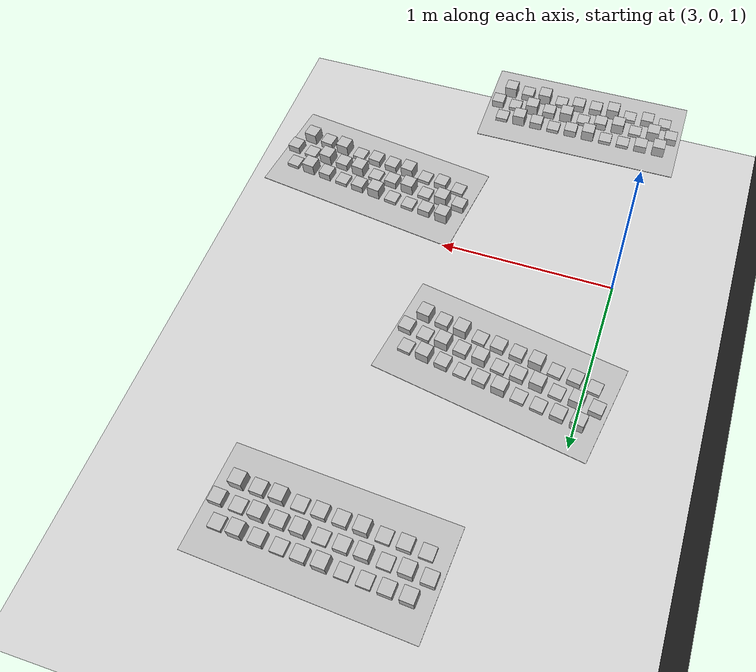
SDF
<sdf version="1.6">
 <world name="default">
  <model name="ground_plane">
   <static>1</static>
   <link name="link">
    <collision name="collision">
     <geometry><plane><normal>0 0 1</normal><size>100 100</size></plane></geometry>
     <surface><friction><ode><mu>100</mu><mu2>50</mu2></ode></friction></surface>
    </collision>
    <visual name="visual">
     <cast_shadows>0</cast_shadows>
     <geometry><plane><normal>0 0 1</normal><size>100 100</size></plane></geometry>
     <material>
      <script><uri>file://media/materials/scripts/gazebo.material</uri><name>Gazebo/Grey</name></script>
     </material>
    </visual>
   </link>
  </model>
  <model name="asphalt_plane">
   <static>1</static>
   <link name="link">
    <collision name="collision">
     <geometry><box><size>20 20 1.4296</size></box></geometry>
     <surface><friction><ode><mu>100</mu><mu2>50</mu2></ode></friction></surface>
    </collision>
    <visual name="visual">
     <cast_shadows>0</cast_shadows>
     <geometry><box><size>20 20 1.4296</size></box></geometry>
     <material>
      <script>
       <uri>model://asphalt_plane/materials/scripts</uri>
       <uri>model://asphalt_plane/materials/textures</uri>
       <name>vrc/asphalt</name>
      </script>
     </material>
    </visual>
   </link>
   <pose>-8.53833 2.29833 0.165376 0 -0 0</pose>
  </model>
  <model name="frc2016_roughterrain_1_clone_12">
   <static>0</static>
   <link name="link">
    <visual name="platform">
     <pose>0 0 0.08269 0 -0 0</pose>
     <geometry><box><size>1.27 0.5969 0.003175</size></box></geometry>
    </visual>
    <collision name="platform">
     <pose>0 0 0.08269 0 -0 0</pose>
     <geometry><box><size>1.27 0.5969 0.003175</size></box></geometry>
    </collision>
    <visual name="row1_block1_sm">
     <pose>0.51435 0.1143 0.09698 0 -0 0</pose>
     <geometry><box><size>0.0762 0.0762 0.0254</size></box></geometry>
    </visual>
    <collision name="row1_block1_sm">
     <pose>0.51435 0.1143 0.09698 0 -0 0</pose>
     <geometry><box><size>0.0762 0.0762 0.0254</size></box></geometry>
    </collision>
    <visual name="row1_block2_lg">
     <pose>0.40005 0.1143 0.12238 0 -0 0</pose>
     <geometry><box><size>0.0762 0.0762 0.0762</size></box></geometry>
    </visual>
    <collision name="row1_block2_lg">
     <pose>0.40005 0.1143 0.12238 0 -0 0</pose>
     <geometry><box><size>0.0762 0.0762 0.0762</size></box></geometry>
    </collision>
    <visual name="row1_block3_md">
     <pose>0.28575 0.1143 0.10968 0 -0 0</pose>
     <geometry><box><size>0.0762 0.0762 0.0508</size></box></geometry>
    </visual>
    <collision name="row1_block3_md">
     <pose>0.28575 0.1143 0.10968 0 -0 0</pose>
     <geometry><box><size>0.0762 0.0762 0.0508</size></box></geometry>
    </collision>
    <visual name="row1_block4_sm">
     <pose>0.17145 0.1143 0.09698 0 -0 0</pose>
     <geometry><box><size>0.0762 0.0762 0.0254</size></box></geometry>
    </visual>
    <collision name="row1_block4_sm">
     <pose>0.17145 0.1143 0.09698 0 -0 0</pose>
     <geometry><box><size>0.0762 0.0762 0.0254</size></box></geometry>
    </collision>
    <visual name="row1_block5_md">
     <pose>0.05715 0.1143 0.10968 0 -0 0</pose>
     <geometry><box><size>0.0762 0.0762 0.0508</size></box></geometry>
    </visual>
    <collision name="row1_block5_md">
     <pose>0.05715 0.1143 0.10968 0 -0 0</pose>
     <geometry><box><size>0.0762 0.0762 0.0508</size></box></geometry>
    </collision>
    <visual name="row1_block6_lg">
     <pose>-0.05715 0.1143 0.12238 0 -0 0</pose>
     <geometry><box><size>0.0762 0.0762 0.0762</size></box></geometry>
    </visual>
    <collision name="row1_block6_lg">
     <pose>-0.05715 0.1143 0.12238 0 -0 0</pose>
     <geometry><box><size>0.0762 0.0762 0.0762</size></box></geometry>
    </collision>
    <visual name="row1_block7_sm">
     <pose>-0.17145 0.1143 0.09698 0 -0 0</pose>
     <geometry><box><size>0.0762 0.0762 0.0254</size></box></geometry>
    </visual>
    <collision name="row1_block7_sm">
     <pose>-0.17145 0.1143 0.09698 0 -0 0</pose>
     <geometry><box><size>0.0762 0.0762 0.0254</size></box></geometry>
    </collision>
    <visual name="row1_block8_sm">
     <pose>-0.28575 0.1143 0.09698 0 -0 0</pose>
     <geometry><box><size>0.0762 0.0762 0.0254</size></box></geometry>
    </visual>
    <collision name="row1_block8_sm">
     <pose>-0.28575 0.1143 0.09698 0 -0 0</pose>
     <geometry><box><size>0.0762 0.0762 0.0254</size></box></geometry>
    </collision>
    <visual name="row1_block9_md">
     <pose>-0.40005 0.1143 0.10968 0 -0 0</pose>
     <geometry><box><size>0.0762 0.0762 0.0508</size></box></geometry>
    </visual>
    <collision name="row1_block9_md">
     <pose>-0.40005 0.1143 0.10968 0 -0 0</pose>
     <geometry><box><size>0.0762 0.0762 0.0508</size></box></geometry>
    </collision>
    <visual name="row1_block10_lg">
     <pose>-0.51435 0.1143 0.12238 0 -0 0</pose>
     <geometry><box><size>0.0762 0.0762 0.0762</size></box></geometry>
    </visual>
    <collision name="row1_block10_lg">
     <pose>-0.51435 0.1143 0.12238 0 -0 0</pose>
     <geometry><box><size>0.0762 0.0762 0.0762</size></box></geometry>
    </collision>
    <visual name="row2_block1_md">
     <pose>0.5715 0 0.10968 0 -0 0</pose>
     <geometry><box><size>0.0762 0.0762 0.0508</size></box></geometry>
    </visual>
    <collision name="row2_block1_md">
     <pose>0.5715 0 0.10968 0 -0 0</pose>
     <geometry><box><size>0.0762 0.0762 0.0508</size></box></geometry>
    </collision>
    <visual name="row2_block2_sm">
     <pose>0.4572 0 0.09698 0 -0 0</pose>
     <geometry><box><size>0.0762 0.0762 0.0254</size></box></geometry>
    </visual>
    <collision name="row2_block2_sm">
     <pose>0.4572 0 0.09698 0 -0 0</pose>
     <geometry><box><size>0.0762 0.0762 0.0254</size></box></geometry>
    </collision>
    <visual name="row2_block3_lg">
     <pose>0.3429 0 0.12238 0 -0 0</pose>
     <geometry><box><size>0.0762 0.0762 0.0762</size></box></geometry>
    </visual>
    <collision name="row2_block3_lg">
     <pose>0.3429 0 0.12238 0 -0 0</pose>
     <geometry><box><size>0.0762 0.0762 0.0762</size></box></geometry>
    </collision>
    <visual name="row2_block4_md">
     <pose>0.2286 0 0.10968 0 -0 0</pose>
     <geometry><box><size>0.0762 0.0762 0.0508</size></box></geometry>
    </visual>
    <collision name="row2_block4_md">
     <pose>0.2286 0 0.10968 0 -0 0</pose>
     <geometry><box><size>0.0762 0.0762 0.0508</size></box></geometry>
    </collision>
    <visual name="row2_block5_lg">
     <pose>0.1143 0 0.12238 0 -0 0</pose>
     <geometry><box><size>0.0762 0.0762 0.0762</size></box></geometry>
    </visual>
    <collision name="row2_block5_lg">
     <pose>0.1143 0 0.12238 0 -0 0</pose>
     <geometry><box><size>0.0762 0.0762 0.0762</size></box></geometry>
    </collision>
    <visual name="row2_block6_sm">
     <pose>0 0 0.09698 0 -0 0</pose>
     <geometry><box><size>0.0762 0.0762 0.0254</size></box></geometry>
    </visual>
    <collision name="row2_block6_sm">
     <pose>0 0 0.09698 0 -0 0</pose>
     <geometry><box><size>0.0762 0.0762 0.0254</size></box></geometry>
    </collision>
    <visual name="row2_block7_md">
     <pose>-0.1143 0 0.10968 0 -0 0</pose>
     <geometry><box><size>0.0762 0.0762 0.0508</size></box></geometry>
    </visual>
    <collision name="row2_block7_md">
     <pose>-0.1143 0 0.10968 0 -0 0</pose>
     <geometry><box><size>0.0762 0.0762 0.0508</size></box></geometry>
    </collision>
    <visual name="row2_block8_lg">
     <pose>-0.2286 0 0.12238 0 -0 0</pose>
     <geometry><box><size>0.0762 0.0762 0.0762</size></box></geometry>
    </visual>
    <collision name="row2_block8_lg">
     <pose>-0.2286 0 0.12238 0 -0 0</pose>
     <geometry><box><size>0.0762 0.0762 0.0762</size></box></geometry>
    </collision>
    <visual name="row2_block9_sm">
     <pose>-0.3429 0 0.09698 0 -0 0</pose>
     <geometry><box><size>0.0762 0.0762 0.0254</size></box></geometry>
    </visual>
    <collision name="row2_block9_sm">
     <pose>-0.3429 0 0.09698 0 -0 0</pose>
     <geometry><box><size>0.0762 0.0762 0.0254</size></box></geometry>
    </collision>
    <visual name="row2_block10_lg">
     <pose>-0.4572 0 0.12238 0 -0 0</pose>
     <geometry><box><size>0.0762 0.0762 0.0762</size></box></geometry>
    </visual>
    <collision name="row2_block10_lg">
     <pose>-0.4572 0 0.12238 0 -0 0</pose>
     <geometry><box><size>0.0762 0.0762 0.0762</size></box></geometry>
    </collision>
    <visual name="row2_block11_md">
     <pose>-0.5715 0 0.10968 0 -0 0</pose>
     <geometry><box><size>0.0762 0.0762 0.0508</size></box></geometry>
    </visual>
    <collision name="row2_block11_md">
     <pose>-0.5715 0 0.10968 0 -0 0</pose>
     <geometry><box><size>0.0762 0.0762 0.0508</size></box></geometry>
    </collision>
    <visual name="row3_block1_lg">
     <pose>0.51435 -0.1143 0.12238 0 -0 0</pose>
     <geometry><box><size>0.0762 0.0762 0.0762</size></box></geometry>
    </visual>
    <collision name="row3_block1_lg">
     <pose>0.51435 -0.1143 0.12238 0 -0 0</pose>
     <geometry><box><size>0.0762 0.0762 0.0762</size></box></geometry>
    </collision>
    <visual name="row3_block2_md">
     <pose>0.40005 -0.1143 0.10968 0 -0 0</pose>
     <geometry><box><size>0.0762 0.0762 0.0508</size></box></geometry>
    </visual>
    <collision name="row3_block2_md">
     <pose>0.40005 -0.1143 0.10968 0 -0 0</pose>
     <geometry><box><size>0.0762 0.0762 0.0508</size></box></geometry>
    </collision>
    <visual name="row3_block3_lg">
     <pose>0.28575 -0.1143 0.12238 0 -0 0</pose>
     <geometry><box><size>0.0762 0.0762 0.0762</size></box></geometry>
    </visual>
    <collision name="row3_block3_lg">
     <pose>0.28575 -0.1143 0.12238 0 -0 0</pose>
     <geometry><box><size>0.0762 0.0762 0.0762</size></box></geometry>
    </collision>
    <visual name="row3_block4_sm">
     <pose>0.17145 -0.1143 0.09698 0 -0 0</pose>
     <geometry><box><size>0.0762 0.0762 0.0254</size></box></geometry>
    </visual>
    <collision name="row3_block4_sm">
     <pose>0.17145 -0.1143 0.09698 0 -0 0</pose>
     <geometry><box><size>0.0762 0.0762 0.0254</size></box></geometry>
    </collision>
    <visual name="row3_block5_md">
     <pose>0.05715 -0.1143 0.10968 0 -0 0</pose>
     <geometry><box><size>0.0762 0.0762 0.0508</size></box></geometry>
    </visual>
    <collision name="row3_block5_md">
     <pose>0.05715 -0.1143 0.10968 0 -0 0</pose>
     <geometry><box><size>0.0762 0.0762 0.0508</size></box></geometry>
    </collision>
    <visual name="row3_block6_md">
     <pose>-0.05715 -0.1143 0.10968 0 -0 0</pose>
     <geometry><box><size>0.0762 0.0762 0.0508</size></box></geometry>
    </visual>
    <collision name="row3_block6_md">
     <pose>-0.05715 -0.1143 0.10968 0 -0 0</pose>
     <geometry><box><size>0.0762 0.0762 0.0508</size></box></geometry>
    </collision>
    <visual name="row3_block7_lg">
     <pose>-0.17145 -0.1143 0.12238 0 -0 0</pose>
     <geometry><box><size>0.0762 0.0762 0.0762</size></box></geometry>
    </visual>
    <collision name="row3_block7_lg">
     <pose>-0.17145 -0.1143 0.12238 0 -0 0</pose>
     <geometry><box><size>0.0762 0.0762 0.0762</size></box></geometry>
    </collision>
    <visual name="row3_block8_sm">
     <pose>-0.28575 -0.1143 0.09698 0 -0 0</pose>
     <geometry><box><size>0.0762 0.0762 0.0254</size></box></geometry>
    </visual>
    <collision name="row3_block8_sm">
     <pose>-0.28575 -0.1143 0.09698 0 -0 0</pose>
     <geometry><box><size>0.0762 0.0762 0.0254</size></box></geometry>
    </collision>
    <visual name="row3_block9_md">
     <pose>-0.40005 -0.1143 0.10968 0 -0 0</pose>
     <geometry><box><size>0.0762 0.0762 0.0508</size></box></geometry>
    </visual>
    <collision name="row3_block9_md">
     <pose>-0.40005 -0.1143 0.10968 0 -0 0</pose>
     <geometry><box><size>0.0762 0.0762 0.0508</size></box></geometry>
    </collision>
    <visual name="row3_block10_sm">
     <pose>-0.51435 -0.1143 0.09698 0 -0 0</pose>
     <geometry><box><size>0.0762 0.0762 0.0254</size></box></geometry>
    </visual>
    <collision name="row3_block10_sm">
     <pose>-0.51435 -0.1143 0.09698 0 -0 0</pose>
     <geometry><box><size>0.0762 0.0762 0.0254</size></box></geometry>
    </collision>
    <inertial>
     <inertia><ixx>1</ixx><ixy>0</ixy><ixz>0</ixz><iyy>1</iyy><iyz>0</iyz><izz>1</izz></inertia>
     <mass>1</mass>
    </inertial>
   </link>
   <pose>3.46545 -1.30099 0.791536 0 -0 0.009093</pose>
  </model>
  <model name="frc2016_roughterrain_1_clone_13">
   <static>0</static>
   <link name="link">
    <visual name="platform">
     <pose>0 0 0.08269 0 -0 0</pose>
     <geometry><box><size>1.27 0.5969 0.003175</size></box></geometry>
    </visual>
    <collision name="platform">
     <pose>0 0 0.08269 0 -0 0</pose>
     <geometry><box><size>1.27 0.5969 0.003175</size></box></geometry>
    </collision>
    <visual name="row1_block1_sm">
     <pose>0.51435 0.1143 0.09698 0 -0 0</pose>
     <geometry><box><size>0.0762 0.0762 0.0254</size></box></geometry>
    </visual>
    <collision name="row1_block1_sm">
     <pose>0.51435 0.1143 0.09698 0 -0 0</pose>
     <geometry><box><size>0.0762 0.0762 0.0254</size></box></geometry>
    </collision>
    <visual name="row1_block2_lg">
     <pose>0.40005 0.1143 0.12238 0 -0 0</pose>
     <geometry><box><size>0.0762 0.0762 0.0762</size></box></geometry>
    </visual>
    <collision name="row1_block2_lg">
     <pose>0.40005 0.1143 0.12238 0 -0 0</pose>
     <geometry><box><size>0.0762 0.0762 0.0762</size></box></geometry>
    </collision>
    <visual name="row1_block3_md">
     <pose>0.28575 0.1143 0.10968 0 -0 0</pose>
     <geometry><box><size>0.0762 0.0762 0.0508</size></box></geometry>
    </visual>
    <collision name="row1_block3_md">
     <pose>0.28575 0.1143 0.10968 0 -0 0</pose>
     <geometry><box><size>0.0762 0.0762 0.0508</size></box></geometry>
    </collision>
    <visual name="row1_block4_sm">
     <pose>0.17145 0.1143 0.09698 0 -0 0</pose>
     <geometry><box><size>0.0762 0.0762 0.0254</size></box></geometry>
    </visual>
    <collision name="row1_block4_sm">
     <pose>0.17145 0.1143 0.09698 0 -0 0</pose>
     <geometry><box><size>0.0762 0.0762 0.0254</size></box></geometry>
    </collision>
    <visual name="row1_block5_md">
     <pose>0.05715 0.1143 0.10968 0 -0 0</pose>
     <geometry><box><size>0.0762 0.0762 0.0508</size></box></geometry>
    </visual>
    <collision name="row1_block5_md">
     <pose>0.05715 0.1143 0.10968 0 -0 0</pose>
     <geometry><box><size>0.0762 0.0762 0.0508</size></box></geometry>
    </collision>
    <visual name="row1_block6_lg">
     <pose>-0.05715 0.1143 0.12238 0 -0 0</pose>
     <geometry><box><size>0.0762 0.0762 0.0762</size></box></geometry>
    </visual>
    <collision name="row1_block6_lg">
     <pose>-0.05715 0.1143 0.12238 0 -0 0</pose>
     <geometry><box><size>0.0762 0.0762 0.0762</size></box></geometry>
    </collision>
    <visual name="row1_block7_sm">
     <pose>-0.17145 0.1143 0.09698 0 -0 0</pose>
     <geometry><box><size>0.0762 0.0762 0.0254</size></box></geometry>
    </visual>
    <collision name="row1_block7_sm">
     <pose>-0.17145 0.1143 0.09698 0 -0 0</pose>
     <geometry><box><size>0.0762 0.0762 0.0254</size></box></geometry>
    </collision>
    <visual name="row1_block8_sm">
     <pose>-0.28575 0.1143 0.09698 0 -0 0</pose>
     <geometry><box><size>0.0762 0.0762 0.0254</size></box></geometry>
    </visual>
    <collision name="row1_block8_sm">
     <pose>-0.28575 0.1143 0.09698 0 -0 0</pose>
     <geometry><box><size>0.0762 0.0762 0.0254</size></box></geometry>
    </collision>
    <visual name="row1_block9_md">
     <pose>-0.40005 0.1143 0.10968 0 -0 0</pose>
     <geometry><box><size>0.0762 0.0762 0.0508</size></box></geometry>
    </visual>
    <collision name="row1_block9_md">
     <pose>-0.40005 0.1143 0.10968 0 -0 0</pose>
     <geometry><box><size>0.0762 0.0762 0.0508</size></box></geometry>
    </collision>
    <visual name="row1_block10_lg">
     <pose>-0.51435 0.1143 0.12238 0 -0 0</pose>
     <geometry><box><size>0.0762 0.0762 0.0762</size></box></geometry>
    </visual>
    <collision name="row1_block10_lg">
     <pose>-0.51435 0.1143 0.12238 0 -0 0</pose>
     <geometry><box><size>0.0762 0.0762 0.0762</size></box></geometry>
    </collision>
    <visual name="row2_block1_md">
     <pose>0.5715 0 0.10968 0 -0 0</pose>
     <geometry><box><size>0.0762 0.0762 0.0508</size></box></geometry>
    </visual>
    <collision name="row2_block1_md">
     <pose>0.5715 0 0.10968 0 -0 0</pose>
     <geometry><box><size>0.0762 0.0762 0.0508</size></box></geometry>
    </collision>
    <visual name="row2_block2_sm">
     <pose>0.4572 0 0.09698 0 -0 0</pose>
     <geometry><box><size>0.0762 0.0762 0.0254</size></box></geometry>
    </visual>
    <collision name="row2_block2_sm">
     <pose>0.4572 0 0.09698 0 -0 0</pose>
     <geometry><box><size>0.0762 0.0762 0.0254</size></box></geometry>
    </collision>
    <visual name="row2_block3_lg">
     <pose>0.3429 0 0.12238 0 -0 0</pose>
     <geometry><box><size>0.0762 0.0762 0.0762</size></box></geometry>
    </visual>
    <collision name="row2_block3_lg">
     <pose>0.3429 0 0.12238 0 -0 0</pose>
     <geometry><box><size>0.0762 0.0762 0.0762</size></box></geometry>
    </collision>
    <visual name="row2_block4_md">
     <pose>0.2286 0 0.10968 0 -0 0</pose>
     <geometry><box><size>0.0762 0.0762 0.0508</size></box></geometry>
    </visual>
    <collision name="row2_block4_md">
     <pose>0.2286 0 0.10968 0 -0 0</pose>
     <geometry><box><size>0.0762 0.0762 0.0508</size></box></geometry>
    </collision>
    <visual name="row2_block5_lg">
     <pose>0.1143 0 0.12238 0 -0 0</pose>
     <geometry><box><size>0.0762 0.0762 0.0762</size></box></geometry>
    </visual>
    <collision name="row2_block5_lg">
     <pose>0.1143 0 0.12238 0 -0 0</pose>
     <geometry><box><size>0.0762 0.0762 0.0762</size></box></geometry>
    </collision>
    <visual name="row2_block6_sm">
     <pose>0 0 0.09698 0 -0 0</pose>
     <geometry><box><size>0.0762 0.0762 0.0254</size></box></geometry>
    </visual>
    <collision name="row2_block6_sm">
     <pose>0 0 0.09698 0 -0 0</pose>
     <geometry><box><size>0.0762 0.0762 0.0254</size></box></geometry>
    </collision>
    <visual name="row2_block7_md">
     <pose>-0.1143 0 0.10968 0 -0 0</pose>
     <geometry><box><size>0.0762 0.0762 0.0508</size></box></geometry>
    </visual>
    <collision name="row2_block7_md">
     <pose>-0.1143 0 0.10968 0 -0 0</pose>
     <geometry><box><size>0.0762 0.0762 0.0508</size></box></geometry>
    </collision>
    <visual name="row2_block8_lg">
     <pose>-0.2286 0 0.12238 0 -0 0</pose>
     <geometry><box><size>0.0762 0.0762 0.0762</size></box></geometry>
    </visual>
    <collision name="row2_block8_lg">
     <pose>-0.2286 0 0.12238 0 -0 0</pose>
     <geometry><box><size>0.0762 0.0762 0.0762</size></box></geometry>
    </collision>
    <visual name="row2_block9_sm">
     <pose>-0.3429 0 0.09698 0 -0 0</pose>
     <geometry><box><size>0.0762 0.0762 0.0254</size></box></geometry>
    </visual>
    <collision name="row2_block9_sm">
     <pose>-0.3429 0 0.09698 0 -0 0</pose>
     <geometry><box><size>0.0762 0.0762 0.0254</size></box></geometry>
    </collision>
    <visual name="row2_block10_lg">
     <pose>-0.4572 0 0.12238 0 -0 0</pose>
     <geometry><box><size>0.0762 0.0762 0.0762</size></box></geometry>
    </visual>
    <collision name="row2_block10_lg">
     <pose>-0.4572 0 0.12238 0 -0 0</pose>
     <geometry><box><size>0.0762 0.0762 0.0762</size></box></geometry>
    </collision>
    <visual name="row2_block11_md">
     <pose>-0.5715 0 0.10968 0 -0 0</pose>
     <geometry><box><size>0.0762 0.0762 0.0508</size></box></geometry>
    </visual>
    <collision name="row2_block11_md">
     <pose>-0.5715 0 0.10968 0 -0 0</pose>
     <geometry><box><size>0.0762 0.0762 0.0508</size></box></geometry>
    </collision>
    <visual name="row3_block1_lg">
     <pose>0.51435 -0.1143 0.12238 0 -0 0</pose>
     <geometry><box><size>0.0762 0.0762 0.0762</size></box></geometry>
    </visual>
    <collision name="row3_block1_lg">
     <pose>0.51435 -0.1143 0.12238 0 -0 0</pose>
     <geometry><box><size>0.0762 0.0762 0.0762</size></box></geometry>
    </collision>
    <visual name="row3_block2_md">
     <pose>0.40005 -0.1143 0.10968 0 -0 0</pose>
     <geometry><box><size>0.0762 0.0762 0.0508</size></box></geometry>
    </visual>
    <collision name="row3_block2_md">
     <pose>0.40005 -0.1143 0.10968 0 -0 0</pose>
     <geometry><box><size>0.0762 0.0762 0.0508</size></box></geometry>
    </collision>
    <visual name="row3_block3_lg">
     <pose>0.28575 -0.1143 0.12238 0 -0 0</pose>
     <geometry><box><size>0.0762 0.0762 0.0762</size></box></geometry>
    </visual>
    <collision name="row3_block3_lg">
     <pose>0.28575 -0.1143 0.12238 0 -0 0</pose>
     <geometry><box><size>0.0762 0.0762 0.0762</size></box></geometry>
    </collision>
    <visual name="row3_block4_sm">
     <pose>0.17145 -0.1143 0.09698 0 -0 0</pose>
     <geometry><box><size>0.0762 0.0762 0.0254</size></box></geometry>
    </visual>
    <collision name="row3_block4_sm">
     <pose>0.17145 -0.1143 0.09698 0 -0 0</pose>
     <geometry><box><size>0.0762 0.0762 0.0254</size></box></geometry>
    </collision>
    <visual name="row3_block5_md">
     <pose>0.05715 -0.1143 0.10968 0 -0 0</pose>
     <geometry><box><size>0.0762 0.0762 0.0508</size></box></geometry>
    </visual>
    <collision name="row3_block5_md">
     <pose>0.05715 -0.1143 0.10968 0 -0 0</pose>
     <geometry><box><size>0.0762 0.0762 0.0508</size></box></geometry>
    </collision>
    <visual name="row3_block6_md">
     <pose>-0.05715 -0.1143 0.10968 0 -0 0</pose>
     <geometry><box><size>0.0762 0.0762 0.0508</size></box></geometry>
    </visual>
    <collision name="row3_block6_md">
     <pose>-0.05715 -0.1143 0.10968 0 -0 0</pose>
     <geometry><box><size>0.0762 0.0762 0.0508</size></box></geometry>
    </collision>
    <visual name="row3_block7_lg">
     <pose>-0.17145 -0.1143 0.12238 0 -0 0</pose>
     <geometry><box><size>0.0762 0.0762 0.0762</size></box></geometry>
    </visual>
    <collision name="row3_block7_lg">
     <pose>-0.17145 -0.1143 0.12238 0 -0 0</pose>
     <geometry><box><size>0.0762 0.0762 0.0762</size></box></geometry>
    </collision>
    <visual name="row3_block8_sm">
     <pose>-0.28575 -0.1143 0.09698 0 -0 0</pose>
     <geometry><box><size>0.0762 0.0762 0.0254</size></box></geometry>
    </visual>
    <collision name="row3_block8_sm">
     <pose>-0.28575 -0.1143 0.09698 0 -0 0</pose>
     <geometry><box><size>0.0762 0.0762 0.0254</size></box></geometry>
    </collision>
    <visual name="row3_block9_md">
     <pose>-0.40005 -0.1143 0.10968 0 -0 0</pose>
     <geometry><box><size>0.0762 0.0762 0.0508</size></box></geometry>
    </visual>
    <collision name="row3_block9_md">
     <pose>-0.40005 -0.1143 0.10968 0 -0 0</pose>
     <geometry><box><size>0.0762 0.0762 0.0508</size></box></geometry>
    </collision>
    <visual name="row3_block10_sm">
     <pose>-0.51435 -0.1143 0.09698 0 -0 0</pose>
     <geometry><box><size>0.0762 0.0762 0.0254</size></box></geometry>
    </visual>
    <collision name="row3_block10_sm">
     <pose>-0.51435 -0.1143 0.09698 0 -0 0</pose>
     <geometry><box><size>0.0762 0.0762 0.0254</size></box></geometry>
    </collision>
    <inertial>
     <inertia><ixx>1</ixx><ixy>0</ixy><ixz>0</ixz><iyy>1</iyy><iyz>0</iyz><izz>1</izz></inertia>
     <mass>1</mass>
    </inertial>
   </link>
   <pose>3.47352 0.605484 0.791378 0 1e-06 -0.161117</pose>
  </model>
  <model name="frc2016_roughterrain_1_clone_16">
   <static>0</static>
   <link name="link">
    <visual name="platform">
     <pose>0 0 0.08269 0 -0 0</pose>
     <geometry><box><size>1.27 0.5969 0.003175</size></box></geometry>
    </visual>
    <collision name="platform">
     <pose>0 0 0.08269 0 -0 0</pose>
     <geometry><box><size>1.27 0.5969 0.003175</size></box></geometry>
    </collision>
    <visual name="row1_block1_sm">
     <pose>0.51435 0.1143 0.09698 0 -0 0</pose>
     <geometry><box><size>0.0762 0.0762 0.0254</size></box></geometry>
    </visual>
    <collision name="row1_block1_sm">
     <pose>0.51435 0.1143 0.09698 0 -0 0</pose>
     <geometry><box><size>0.0762 0.0762 0.0254</size></box></geometry>
    </collision>
    <visual name="row1_block2_lg">
     <pose>0.40005 0.1143 0.12238 0 -0 0</pose>
     <geometry><box><size>0.0762 0.0762 0.0762</size></box></geometry>
    </visual>
    <collision name="row1_block2_lg">
     <pose>0.40005 0.1143 0.12238 0 -0 0</pose>
     <geometry><box><size>0.0762 0.0762 0.0762</size></box></geometry>
    </collision>
    <visual name="row1_block3_md">
     <pose>0.28575 0.1143 0.10968 0 -0 0</pose>
     <geometry><box><size>0.0762 0.0762 0.0508</size></box></geometry>
    </visual>
    <collision name="row1_block3_md">
     <pose>0.28575 0.1143 0.10968 0 -0 0</pose>
     <geometry><box><size>0.0762 0.0762 0.0508</size></box></geometry>
    </collision>
    <visual name="row1_block4_sm">
     <pose>0.17145 0.1143 0.09698 0 -0 0</pose>
     <geometry><box><size>0.0762 0.0762 0.0254</size></box></geometry>
    </visual>
    <collision name="row1_block4_sm">
     <pose>0.17145 0.1143 0.09698 0 -0 0</pose>
     <geometry><box><size>0.0762 0.0762 0.0254</size></box></geometry>
    </collision>
    <visual name="row1_block5_md">
     <pose>0.05715 0.1143 0.10968 0 -0 0</pose>
     <geometry><box><size>0.0762 0.0762 0.0508</size></box></geometry>
    </visual>
    <collision name="row1_block5_md">
     <pose>0.05715 0.1143 0.10968 0 -0 0</pose>
     <geometry><box><size>0.0762 0.0762 0.0508</size></box></geometry>
    </collision>
    <visual name="row1_block6_lg">
     <pose>-0.05715 0.1143 0.12238 0 -0 0</pose>
     <geometry><box><size>0.0762 0.0762 0.0762</size></box></geometry>
    </visual>
    <collision name="row1_block6_lg">
     <pose>-0.05715 0.1143 0.12238 0 -0 0</pose>
     <geometry><box><size>0.0762 0.0762 0.0762</size></box></geometry>
    </collision>
    <visual name="row1_block7_sm">
     <pose>-0.17145 0.1143 0.09698 0 -0 0</pose>
     <geometry><box><size>0.0762 0.0762 0.0254</size></box></geometry>
    </visual>
    <collision name="row1_block7_sm">
     <pose>-0.17145 0.1143 0.09698 0 -0 0</pose>
     <geometry><box><size>0.0762 0.0762 0.0254</size></box></geometry>
    </collision>
    <visual name="row1_block8_sm">
     <pose>-0.28575 0.1143 0.09698 0 -0 0</pose>
     <geometry><box><size>0.0762 0.0762 0.0254</size></box></geometry>
    </visual>
    <collision name="row1_block8_sm">
     <pose>-0.28575 0.1143 0.09698 0 -0 0</pose>
     <geometry><box><size>0.0762 0.0762 0.0254</size></box></geometry>
    </collision>
    <visual name="row1_block9_md">
     <pose>-0.40005 0.1143 0.10968 0 -0 0</pose>
     <geometry><box><size>0.0762 0.0762 0.0508</size></box></geometry>
    </visual>
    <collision name="row1_block9_md">
     <pose>-0.40005 0.1143 0.10968 0 -0 0</pose>
     <geometry><box><size>0.0762 0.0762 0.0508</size></box></geometry>
    </collision>
    <visual name="row1_block10_lg">
     <pose>-0.51435 0.1143 0.12238 0 -0 0</pose>
     <geometry><box><size>0.0762 0.0762 0.0762</size></box></geometry>
    </visual>
    <collision name="row1_block10_lg">
     <pose>-0.51435 0.1143 0.12238 0 -0 0</pose>
     <geometry><box><size>0.0762 0.0762 0.0762</size></box></geometry>
    </collision>
    <visual name="row2_block1_md">
     <pose>0.5715 0 0.10968 0 -0 0</pose>
     <geometry><box><size>0.0762 0.0762 0.0508</size></box></geometry>
    </visual>
    <collision name="row2_block1_md">
     <pose>0.5715 0 0.10968 0 -0 0</pose>
     <geometry><box><size>0.0762 0.0762 0.0508</size></box></geometry>
    </collision>
    <visual name="row2_block2_sm">
     <pose>0.4572 0 0.09698 0 -0 0</pose>
     <geometry><box><size>0.0762 0.0762 0.0254</size></box></geometry>
    </visual>
    <collision name="row2_block2_sm">
     <pose>0.4572 0 0.09698 0 -0 0</pose>
     <geometry><box><size>0.0762 0.0762 0.0254</size></box></geometry>
    </collision>
    <visual name="row2_block3_lg">
     <pose>0.3429 0 0.12238 0 -0 0</pose>
     <geometry><box><size>0.0762 0.0762 0.0762</size></box></geometry>
    </visual>
    <collision name="row2_block3_lg">
     <pose>0.3429 0 0.12238 0 -0 0</pose>
     <geometry><box><size>0.0762 0.0762 0.0762</size></box></geometry>
    </collision>
    <visual name="row2_block4_md">
     <pose>0.2286 0 0.10968 0 -0 0</pose>
     <geometry><box><size>0.0762 0.0762 0.0508</size></box></geometry>
    </visual>
    <collision name="row2_block4_md">
     <pose>0.2286 0 0.10968 0 -0 0</pose>
     <geometry><box><size>0.0762 0.0762 0.0508</size></box></geometry>
    </collision>
    <visual name="row2_block5_lg">
     <pose>0.1143 0 0.12238 0 -0 0</pose>
     <geometry><box><size>0.0762 0.0762 0.0762</size></box></geometry>
    </visual>
    <collision name="row2_block5_lg">
     <pose>0.1143 0 0.12238 0 -0 0</pose>
     <geometry><box><size>0.0762 0.0762 0.0762</size></box></geometry>
    </collision>
    <visual name="row2_block6_sm">
     <pose>0 0 0.09698 0 -0 0</pose>
     <geometry><box><size>0.0762 0.0762 0.0254</size></box></geometry>
    </visual>
    <collision name="row2_block6_sm">
     <pose>0 0 0.09698 0 -0 0</pose>
     <geometry><box><size>0.0762 0.0762 0.0254</size></box></geometry>
    </collision>
    <visual name="row2_block7_md">
     <pose>-0.1143 0 0.10968 0 -0 0</pose>
     <geometry><box><size>0.0762 0.0762 0.0508</size></box></geometry>
    </visual>
    <collision name="row2_block7_md">
     <pose>-0.1143 0 0.10968 0 -0 0</pose>
     <geometry><box><size>0.0762 0.0762 0.0508</size></box></geometry>
    </collision>
    <visual name="row2_block8_lg">
     <pose>-0.2286 0 0.12238 0 -0 0</pose>
     <geometry><box><size>0.0762 0.0762 0.0762</size></box></geometry>
    </visual>
    <collision name="row2_block8_lg">
     <pose>-0.2286 0 0.12238 0 -0 0</pose>
     <geometry><box><size>0.0762 0.0762 0.0762</size></box></geometry>
    </collision>
    <visual name="row2_block9_sm">
     <pose>-0.3429 0 0.09698 0 -0 0</pose>
     <geometry><box><size>0.0762 0.0762 0.0254</size></box></geometry>
    </visual>
    <collision name="row2_block9_sm">
     <pose>-0.3429 0 0.09698 0 -0 0</pose>
     <geometry><box><size>0.0762 0.0762 0.0254</size></box></geometry>
    </collision>
    <visual name="row2_block10_lg">
     <pose>-0.4572 0 0.12238 0 -0 0</pose>
     <geometry><box><size>0.0762 0.0762 0.0762</size></box></geometry>
    </visual>
    <collision name="row2_block10_lg">
     <pose>-0.4572 0 0.12238 0 -0 0</pose>
     <geometry><box><size>0.0762 0.0762 0.0762</size></box></geometry>
    </collision>
    <visual name="row2_block11_md">
     <pose>-0.5715 0 0.10968 0 -0 0</pose>
     <geometry><box><size>0.0762 0.0762 0.0508</size></box></geometry>
    </visual>
    <collision name="row2_block11_md">
     <pose>-0.5715 0 0.10968 0 -0 0</pose>
     <geometry><box><size>0.0762 0.0762 0.0508</size></box></geometry>
    </collision>
    <visual name="row3_block1_lg">
     <pose>0.51435 -0.1143 0.12238 0 -0 0</pose>
     <geometry><box><size>0.0762 0.0762 0.0762</size></box></geometry>
    </visual>
    <collision name="row3_block1_lg">
     <pose>0.51435 -0.1143 0.12238 0 -0 0</pose>
     <geometry><box><size>0.0762 0.0762 0.0762</size></box></geometry>
    </collision>
    <visual name="row3_block2_md">
     <pose>0.40005 -0.1143 0.10968 0 -0 0</pose>
     <geometry><box><size>0.0762 0.0762 0.0508</size></box></geometry>
    </visual>
    <collision name="row3_block2_md">
     <pose>0.40005 -0.1143 0.10968 0 -0 0</pose>
     <geometry><box><size>0.0762 0.0762 0.0508</size></box></geometry>
    </collision>
    <visual name="row3_block3_lg">
     <pose>0.28575 -0.1143 0.12238 0 -0 0</pose>
     <geometry><box><size>0.0762 0.0762 0.0762</size></box></geometry>
    </visual>
    <collision name="row3_block3_lg">
     <pose>0.28575 -0.1143 0.12238 0 -0 0</pose>
     <geometry><box><size>0.0762 0.0762 0.0762</size></box></geometry>
    </collision>
    <visual name="row3_block4_sm">
     <pose>0.17145 -0.1143 0.09698 0 -0 0</pose>
     <geometry><box><size>0.0762 0.0762 0.0254</size></box></geometry>
    </visual>
    <collision name="row3_block4_sm">
     <pose>0.17145 -0.1143 0.09698 0 -0 0</pose>
     <geometry><box><size>0.0762 0.0762 0.0254</size></box></geometry>
    </collision>
    <visual name="row3_block5_md">
     <pose>0.05715 -0.1143 0.10968 0 -0 0</pose>
     <geometry><box><size>0.0762 0.0762 0.0508</size></box></geometry>
    </visual>
    <collision name="row3_block5_md">
     <pose>0.05715 -0.1143 0.10968 0 -0 0</pose>
     <geometry><box><size>0.0762 0.0762 0.0508</size></box></geometry>
    </collision>
    <visual name="row3_block6_md">
     <pose>-0.05715 -0.1143 0.10968 0 -0 0</pose>
     <geometry><box><size>0.0762 0.0762 0.0508</size></box></geometry>
    </visual>
    <collision name="row3_block6_md">
     <pose>-0.05715 -0.1143 0.10968 0 -0 0</pose>
     <geometry><box><size>0.0762 0.0762 0.0508</size></box></geometry>
    </collision>
    <visual name="row3_block7_lg">
     <pose>-0.17145 -0.1143 0.12238 0 -0 0</pose>
     <geometry><box><size>0.0762 0.0762 0.0762</size></box></geometry>
    </visual>
    <collision name="row3_block7_lg">
     <pose>-0.17145 -0.1143 0.12238 0 -0 0</pose>
     <geometry><box><size>0.0762 0.0762 0.0762</size></box></geometry>
    </collision>
    <visual name="row3_block8_sm">
     <pose>-0.28575 -0.1143 0.09698 0 -0 0</pose>
     <geometry><box><size>0.0762 0.0762 0.0254</size></box></geometry>
    </visual>
    <collision name="row3_block8_sm">
     <pose>-0.28575 -0.1143 0.09698 0 -0 0</pose>
     <geometry><box><size>0.0762 0.0762 0.0254</size></box></geometry>
    </collision>
    <visual name="row3_block9_md">
     <pose>-0.40005 -0.1143 0.10968 0 -0 0</pose>
     <geometry><box><size>0.0762 0.0762 0.0508</size></box></geometry>
    </visual>
    <collision name="row3_block9_md">
     <pose>-0.40005 -0.1143 0.10968 0 -0 0</pose>
     <geometry><box><size>0.0762 0.0762 0.0508</size></box></geometry>
    </collision>
    <visual name="row3_block10_sm">
     <pose>-0.51435 -0.1143 0.09698 0 -0 0</pose>
     <geometry><box><size>0.0762 0.0762 0.0254</size></box></geometry>
    </visual>
    <collision name="row3_block10_sm">
     <pose>-0.51435 -0.1143 0.09698 0 -0 0</pose>
     <geometry><box><size>0.0762 0.0762 0.0254</size></box></geometry>
    </collision>
    <inertial>
     <inertia><ixx>1</ixx><ixy>0</ixy><ixz>0</ixz><iyy>1</iyy><iyz>0</iyz><izz>1</izz></inertia>
     <mass>1</mass>
    </inertial>
   </link>
   <pose>4.58734 -0.455797 0.793176 0.005489 0 -0.127723</pose>
  </model>
  <model name="frc2016_roughterrain_1_clone_11_clone_7">
   <static>0</static>
   <link name="link">
    <visual name="platform">
     <pose>0 0 0.08269 0 -0 0</pose>
     <geometry><box><size>1.27 0.5969 0.003175</size></box></geometry>
    </visual>
    <collision name="platform">
     <pose>0 0 0.08269 0 -0 0</pose>
     <geometry><box><size>1.27 0.5969 0.003175</size></box></geometry>
    </collision>
    <visual name="row1_block1_sm">
     <pose>0.51435 0.1143 0.09698 0 -0 0</pose>
     <geometry><box><size>0.0762 0.0762 0.0254</size></box></geometry>
    </visual>
    <collision name="row1_block1_sm">
     <pose>0.51435 0.1143 0.09698 0 -0 0</pose>
     <geometry><box><size>0.0762 0.0762 0.0254</size></box></geometry>
    </collision>
    <visual name="row1_block2_lg">
     <pose>0.40005 0.1143 0.12238 0 -0 0</pose>
     <geometry><box><size>0.0762 0.0762 0.0762</size></box></geometry>
    </visual>
    <collision name="row1_block2_lg">
     <pose>0.40005 0.1143 0.12238 0 -0 0</pose>
     <geometry><box><size>0.0762 0.0762 0.0762</size></box></geometry>
    </collision>
    <visual name="row1_block3_md">
     <pose>0.28575 0.1143 0.10968 0 -0 0</pose>
     <geometry><box><size>0.0762 0.0762 0.0508</size></box></geometry>
    </visual>
    <collision name="row1_block3_md">
     <pose>0.28575 0.1143 0.10968 0 -0 0</pose>
     <geometry><box><size>0.0762 0.0762 0.0508</size></box></geometry>
    </collision>
    <visual name="row1_block4_sm">
     <pose>0.17145 0.1143 0.09698 0 -0 0</pose>
     <geometry><box><size>0.0762 0.0762 0.0254</size></box></geometry>
    </visual>
    <collision name="row1_block4_sm">
     <pose>0.17145 0.1143 0.09698 0 -0 0</pose>
     <geometry><box><size>0.0762 0.0762 0.0254</size></box></geometry>
    </collision>
    <visual name="row1_block5_md">
     <pose>0.05715 0.1143 0.10968 0 -0 0</pose>
     <geometry><box><size>0.0762 0.0762 0.0508</size></box></geometry>
    </visual>
    <collision name="row1_block5_md">
     <pose>0.05715 0.1143 0.10968 0 -0 0</pose>
     <geometry><box><size>0.0762 0.0762 0.0508</size></box></geometry>
    </collision>
    <visual name="row1_block6_lg">
     <pose>-0.05715 0.1143 0.12238 0 -0 0</pose>
     <geometry><box><size>0.0762 0.0762 0.0762</size></box></geometry>
    </visual>
    <collision name="row1_block6_lg">
     <pose>-0.05715 0.1143 0.12238 0 -0 0</pose>
     <geometry><box><size>0.0762 0.0762 0.0762</size></box></geometry>
    </collision>
    <visual name="row1_block7_sm">
     <pose>-0.17145 0.1143 0.09698 0 -0 0</pose>
     <geometry><box><size>0.0762 0.0762 0.0254</size></box></geometry>
    </visual>
    <collision name="row1_block7_sm">
     <pose>-0.17145 0.1143 0.09698 0 -0 0</pose>
     <geometry><box><size>0.0762 0.0762 0.0254</size></box></geometry>
    </collision>
    <visual name="row1_block8_sm">
     <pose>-0.28575 0.1143 0.09698 0 -0 0</pose>
     <geometry><box><size>0.0762 0.0762 0.0254</size></box></geometry>
    </visual>
    <collision name="row1_block8_sm">
     <pose>-0.28575 0.1143 0.09698 0 -0 0</pose>
     <geometry><box><size>0.0762 0.0762 0.0254</size></box></geometry>
    </collision>
    <visual name="row1_block9_md">
     <pose>-0.40005 0.1143 0.10968 0 -0 0</pose>
     <geometry><box><size>0.0762 0.0762 0.0508</size></box></geometry>
    </visual>
    <collision name="row1_block9_md">
     <pose>-0.40005 0.1143 0.10968 0 -0 0</pose>
     <geometry><box><size>0.0762 0.0762 0.0508</size></box></geometry>
    </collision>
    <visual name="row1_block10_lg">
     <pose>-0.51435 0.1143 0.12238 0 -0 0</pose>
     <geometry><box><size>0.0762 0.0762 0.0762</size></box></geometry>
    </visual>
    <collision name="row1_block10_lg">
     <pose>-0.51435 0.1143 0.12238 0 -0 0</pose>
     <geometry><box><size>0.0762 0.0762 0.0762</size></box></geometry>
    </collision>
    <visual name="row2_block1_md">
     <pose>0.5715 0 0.10968 0 -0 0</pose>
     <geometry><box><size>0.0762 0.0762 0.0508</size></box></geometry>
    </visual>
    <collision name="row2_block1_md">
     <pose>0.5715 0 0.10968 0 -0 0</pose>
     <geometry><box><size>0.0762 0.0762 0.0508</size></box></geometry>
    </collision>
    <visual name="row2_block2_sm">
     <pose>0.4572 0 0.09698 0 -0 0</pose>
     <geometry><box><size>0.0762 0.0762 0.0254</size></box></geometry>
    </visual>
    <collision name="row2_block2_sm">
     <pose>0.4572 0 0.09698 0 -0 0</pose>
     <geometry><box><size>0.0762 0.0762 0.0254</size></box></geometry>
    </collision>
    <visual name="row2_block3_lg">
     <pose>0.3429 0 0.12238 0 -0 0</pose>
     <geometry><box><size>0.0762 0.0762 0.0762</size></box></geometry>
    </visual>
    <collision name="row2_block3_lg">
     <pose>0.3429 0 0.12238 0 -0 0</pose>
     <geometry><box><size>0.0762 0.0762 0.0762</size></box></geometry>
    </collision>
    <visual name="row2_block4_md">
     <pose>0.2286 0 0.10968 0 -0 0</pose>
     <geometry><box><size>0.0762 0.0762 0.0508</size></box></geometry>
    </visual>
    <collision name="row2_block4_md">
     <pose>0.2286 0 0.10968 0 -0 0</pose>
     <geometry><box><size>0.0762 0.0762 0.0508</size></box></geometry>
    </collision>
    <visual name="row2_block5_lg">
     <pose>0.1143 0 0.12238 0 -0 0</pose>
     <geometry><box><size>0.0762 0.0762 0.0762</size></box></geometry>
    </visual>
    <collision name="row2_block5_lg">
     <pose>0.1143 0 0.12238 0 -0 0</pose>
     <geometry><box><size>0.0762 0.0762 0.0762</size></box></geometry>
    </collision>
    <visual name="row2_block6_sm">
     <pose>0 0 0.09698 0 -0 0</pose>
     <geometry><box><size>0.0762 0.0762 0.0254</size></box></geometry>
    </visual>
    <collision name="row2_block6_sm">
     <pose>0 0 0.09698 0 -0 0</pose>
     <geometry><box><size>0.0762 0.0762 0.0254</size></box></geometry>
    </collision>
    <visual name="row2_block7_md">
     <pose>-0.1143 0 0.10968 0 -0 0</pose>
     <geometry><box><size>0.0762 0.0762 0.0508</size></box></geometry>
    </visual>
    <collision name="row2_block7_md">
     <pose>-0.1143 0 0.10968 0 -0 0</pose>
     <geometry><box><size>0.0762 0.0762 0.0508</size></box></geometry>
    </collision>
    <visual name="row2_block8_lg">
     <pose>-0.2286 0 0.12238 0 -0 0</pose>
     <geometry><box><size>0.0762 0.0762 0.0762</size></box></geometry>
    </visual>
    <collision name="row2_block8_lg">
     <pose>-0.2286 0 0.12238 0 -0 0</pose>
     <geometry><box><size>0.0762 0.0762 0.0762</size></box></geometry>
    </collision>
    <visual name="row2_block9_sm">
     <pose>-0.3429 0 0.09698 0 -0 0</pose>
     <geometry><box><size>0.0762 0.0762 0.0254</size></box></geometry>
    </visual>
    <collision name="row2_block9_sm">
     <pose>-0.3429 0 0.09698 0 -0 0</pose>
     <geometry><box><size>0.0762 0.0762 0.0254</size></box></geometry>
    </collision>
    <visual name="row2_block10_lg">
     <pose>-0.4572 0 0.12238 0 -0 0</pose>
     <geometry><box><size>0.0762 0.0762 0.0762</size></box></geometry>
    </visual>
    <collision name="row2_block10_lg">
     <pose>-0.4572 0 0.12238 0 -0 0</pose>
     <geometry><box><size>0.0762 0.0762 0.0762</size></box></geometry>
    </collision>
    <visual name="row2_block11_md">
     <pose>-0.5715 0 0.10968 0 -0 0</pose>
     <geometry><box><size>0.0762 0.0762 0.0508</size></box></geometry>
    </visual>
    <collision name="row2_block11_md">
     <pose>-0.5715 0 0.10968 0 -0 0</pose>
     <geometry><box><size>0.0762 0.0762 0.0508</size></box></geometry>
    </collision>
    <visual name="row3_block1_lg">
     <pose>0.51435 -0.1143 0.12238 0 -0 0</pose>
     <geometry><box><size>0.0762 0.0762 0.0762</size></box></geometry>
    </visual>
    <collision name="row3_block1_lg">
     <pose>0.51435 -0.1143 0.12238 0 -0 0</pose>
     <geometry><box><size>0.0762 0.0762 0.0762</size></box></geometry>
    </collision>
    <visual name="row3_block2_md">
     <pose>0.40005 -0.1143 0.10968 0 -0 0</pose>
     <geometry><box><size>0.0762 0.0762 0.0508</size></box></geometry>
    </visual>
    <collision name="row3_block2_md">
     <pose>0.40005 -0.1143 0.10968 0 -0 0</pose>
     <geometry><box><size>0.0762 0.0762 0.0508</size></box></geometry>
    </collision>
    <visual name="row3_block3_lg">
     <pose>0.28575 -0.1143 0.12238 0 -0 0</pose>
     <geometry><box><size>0.0762 0.0762 0.0762</size></box></geometry>
    </visual>
    <collision name="row3_block3_lg">
     <pose>0.28575 -0.1143 0.12238 0 -0 0</pose>
     <geometry><box><size>0.0762 0.0762 0.0762</size></box></geometry>
    </collision>
    <visual name="row3_block4_sm">
     <pose>0.17145 -0.1143 0.09698 0 -0 0</pose>
     <geometry><box><size>0.0762 0.0762 0.0254</size></box></geometry>
    </visual>
    <collision name="row3_block4_sm">
     <pose>0.17145 -0.1143 0.09698 0 -0 0</pose>
     <geometry><box><size>0.0762 0.0762 0.0254</size></box></geometry>
    </collision>
    <visual name="row3_block5_md">
     <pose>0.05715 -0.1143 0.10968 0 -0 0</pose>
     <geometry><box><size>0.0762 0.0762 0.0508</size></box></geometry>
    </visual>
    <collision name="row3_block5_md">
     <pose>0.05715 -0.1143 0.10968 0 -0 0</pose>
     <geometry><box><size>0.0762 0.0762 0.0508</size></box></geometry>
    </collision>
    <visual name="row3_block6_md">
     <pose>-0.05715 -0.1143 0.10968 0 -0 0</pose>
     <geometry><box><size>0.0762 0.0762 0.0508</size></box></geometry>
    </visual>
    <collision name="row3_block6_md">
     <pose>-0.05715 -0.1143 0.10968 0 -0 0</pose>
     <geometry><box><size>0.0762 0.0762 0.0508</size></box></geometry>
    </collision>
    <visual name="row3_block7_lg">
     <pose>-0.17145 -0.1143 0.12238 0 -0 0</pose>
     <geometry><box><size>0.0762 0.0762 0.0762</size></box></geometry>
    </visual>
    <collision name="row3_block7_lg">
     <pose>-0.17145 -0.1143 0.12238 0 -0 0</pose>
     <geometry><box><size>0.0762 0.0762 0.0762</size></box></geometry>
    </collision>
    <visual name="row3_block8_sm">
     <pose>-0.28575 -0.1143 0.09698 0 -0 0</pose>
     <geometry><box><size>0.0762 0.0762 0.0254</size></box></geometry>
    </visual>
    <collision name="row3_block8_sm">
     <pose>-0.28575 -0.1143 0.09698 0 -0 0</pose>
     <geometry><box><size>0.0762 0.0762 0.0254</size></box></geometry>
    </collision>
    <visual name="row3_block9_md">
     <pose>-0.40005 -0.1143 0.10968 0 -0 0</pose>
     <geometry><box><size>0.0762 0.0762 0.0508</size></box></geometry>
    </visual>
    <collision name="row3_block9_md">
     <pose>-0.40005 -0.1143 0.10968 0 -0 0</pose>
     <geometry><box><size>0.0762 0.0762 0.0508</size></box></geometry>
    </collision>
    <visual name="row3_block10_sm">
     <pose>-0.51435 -0.1143 0.09698 0 -0 0</pose>
     <geometry><box><size>0.0762 0.0762 0.0254</size></box></geometry>
    </visual>
    <collision name="row3_block10_sm">
     <pose>-0.51435 -0.1143 0.09698 0 -0 0</pose>
     <geometry><box><size>0.0762 0.0762 0.0254</size></box></geometry>
    </collision>
    <inertial>
     <inertia><ixx>1</ixx><ixy>0</ixy><ixz>0</ixz><iyy>1</iyy><iyz>0</iyz><izz>1</izz></inertia>
     <mass>1</mass>
    </inertial>
   </link>
   <pose>4.03562 1.76494 0.791527 0 0 -0.055776</pose>
  </model>
 </world>
</sdf>
